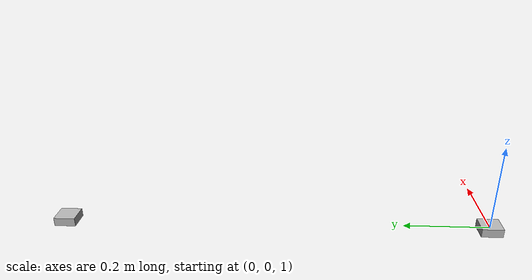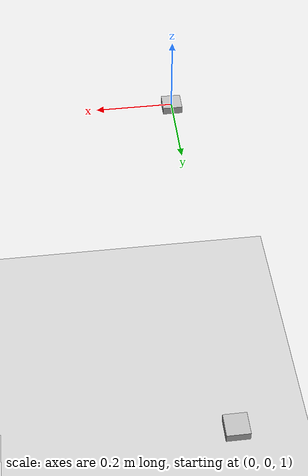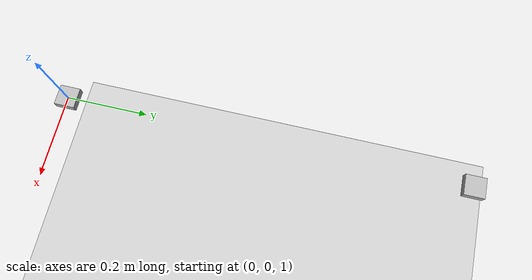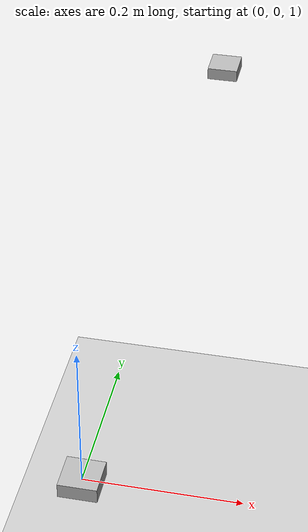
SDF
<sdf version='1.6'>
  <world name='default'>
    <include>
      <uri>model://sun</uri>
    </include>

    <include>
      <uri>model://ground_plane</uri>
    </include>

    <model name='camera_rgb'>
      <static>1</static>
      <link name='link'>
        <visual name='visual'>
          <geometry>
            <box>
              <size>0.02 0.05 0.05</size>
            </box>
          </geometry>
        </visual>
        <sensor name='cam_rgb' type='camera'>
          <always_on>1</always_on>
          <update_rate>50</update_rate>
          <visualize>1</visualize>
          <camera>
            <image>
              <width>64</width>
              <height>64</height>
            </image>
          </camera>
        </sensor>
      </link>
      <pose frame=''>0 1 1 0 1.570796 0</pose>
    </model>

    <model name='camera_l8'>
      <static>1</static>
      <link name='link'>
        <visual name='visual'>
          <geometry>
            <box>
              <size>0.02 0.05 0.05</size>
            </box>
          </geometry>
        </visual>
        <sensor name='cam_l8' type='camera'>
          <always_on>1</always_on>
          <update_rate>50</update_rate>
          <visualize>1</visualize>
          <camera>
            <image>
              <width>64</width>
              <height>64</height>
              <format>L8</format>
            </image>
          </camera>
        </sensor>
      </link>
      <pose frame=''>0 0 1 0 1.570796 0</pose>
    </model>
  </world>
</sdf>
